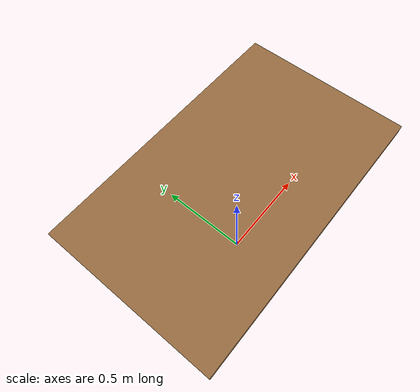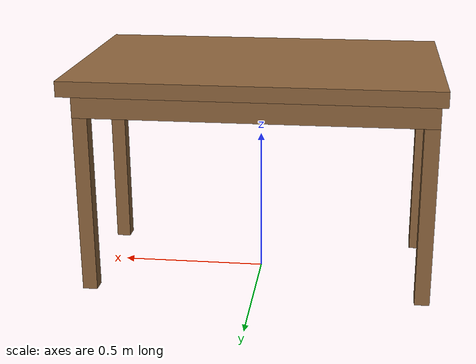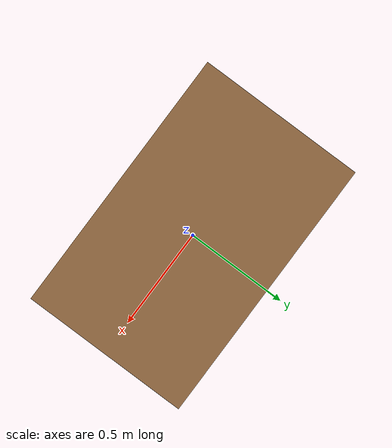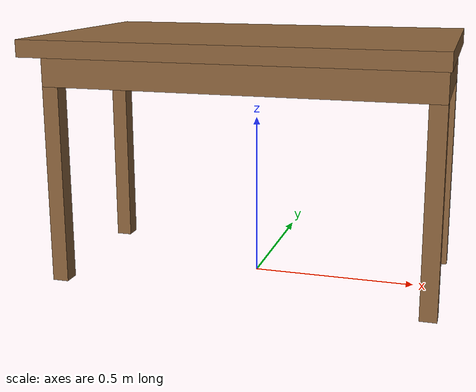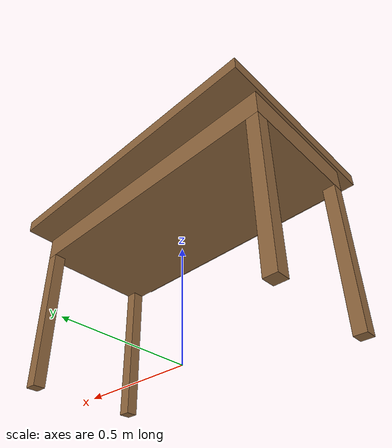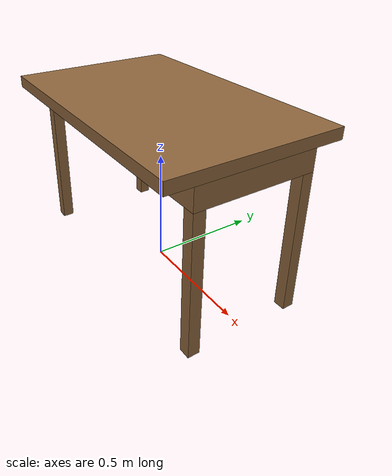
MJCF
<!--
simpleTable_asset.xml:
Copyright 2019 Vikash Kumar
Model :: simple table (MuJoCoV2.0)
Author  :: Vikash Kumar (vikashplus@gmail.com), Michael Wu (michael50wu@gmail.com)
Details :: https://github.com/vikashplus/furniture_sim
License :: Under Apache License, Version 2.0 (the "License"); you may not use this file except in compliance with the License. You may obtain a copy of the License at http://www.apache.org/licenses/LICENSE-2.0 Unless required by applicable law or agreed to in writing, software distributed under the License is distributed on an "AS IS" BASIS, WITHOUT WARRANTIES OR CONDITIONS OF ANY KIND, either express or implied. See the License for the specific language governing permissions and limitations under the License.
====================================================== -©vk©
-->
<mujoco model="table">
    <compiler angle="radian" meshdir="" texturedir=""/>

    <!-- Include assets if they exist -->
    <include file="simpleTable_asset.xml"/>

    <worldbody>
        <body name="table" pos="0 0 0">
            <!-- Include body if it exists -->
            <include file="simpleWoodTable_body.xml"/>
        </body>
    </worldbody>
</mujoco>

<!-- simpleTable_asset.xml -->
<mujocoinclude>

    <asset>
        <texture name="T_simpleWoodTable" type="cube" height="1" width="1" file="textures/wood1.png" />
        <material name="M_simpleWoodTable" texture="T_simpleWoodTable" rgba="0.8 0.8 0.8 1" shininess="0.2" reflectance="0.3" texuniform="false" />
        <texture name="T_simpleMarbleTable" type="cube" height="1" width="1" file="textures/stone0.png" />
        <material name="M_simpleMarbleTable" texture="T_simpleMarbleTable" rgba="0.75 0.75 0.75 1" shininess="1" reflectance="1" texuniform="false" />
        <texture name="T_simpleGraniteTable" type="cube" height="1" width="1" file="textures/stone1.png" />
        <material name="M_simpleGraniteTable" texture="T_simpleGraniteTable" rgba="0.75 0.75 0.75 1" shininess="1" reflectance="1" texuniform="false" />
    </asset>

    <default>

        <default class="viz_simpleWoodTable" >
            <geom group="0" contype="0" conaffinity="0" type="mesh" material="M_simpleWoodTable"/>
        </default>

        <default class="viz_simpleMarbleTable" >
            <geom group="0" contype="0" conaffinity="0" type="mesh" material="M_simpleMarbleTable"/>
        </default>

        <default class="viz_simpleGraniteTable" >
            <geom group="0" contype="0" conaffinity="0" type="mesh" material="M_simpleGraniteTable"/>
        </default>

        <default class="body_simpleTable" >
            <geom contype="1" conaffinity="1" group="4" rgba=".4 .5 .6 1" />
            <joint limited="true" damping="1" frictionloss="0.5" armature=".01" />
        </default>

   </default>

</mujocoinclude>

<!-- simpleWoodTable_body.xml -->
<mujocoinclude>

    <!-- simpleWoodTable -©vk©-->
    <body name="simpleWoodTable" pos="0 0 0"  childclass="body_simpleTable" >
        <geom class="viz_simpleWoodTable" type="box" size=".6 .375 .025" pos="0 0 0.735"/>
        <geom class="viz_simpleWoodTable" type="box" size="0.59 0.26 .05" pos="0 0 0.66"/>
        <geom class="viz_simpleWoodTable" type="box" size="0.025 0.025 0.305" pos="-0.565 0.235 0.305"/>
        <geom class="viz_simpleWoodTable" type="box" size="0.025 0.025 0.305" pos="-0.565 -0.235 0.305"/>
        <geom class="viz_simpleWoodTable" type="box" size="0.025 0.025 0.305" pos="0.565 0.235 0.305"/>
        <geom class="viz_simpleWoodTable" type="box" size="0.025 0.025 0.305" pos="0.565 -0.235 0.305"/>

        <geom name="table_top" type="box" size=".6 .375 .025" pos="0 0 0.735" mass="40" />
        <geom type="box" size="0.59 0.26 .05" pos="0 0 0.66"/>
        <geom type="box" size="0.025 0.025 0.305" pos="-0.565 0.235 0.305"/>
        <geom type="box" size="0.025 0.025 0.305" pos="-0.565 -0.235 0.305"/>
        <geom type="box" size="0.025 0.025 0.305" pos="0.565 0.235 0.305"/>
        <geom type="box" size="0.025 0.025 0.305" pos="0.565 -0.235 0.305"/>
    </body>
</mujocoinclude>
